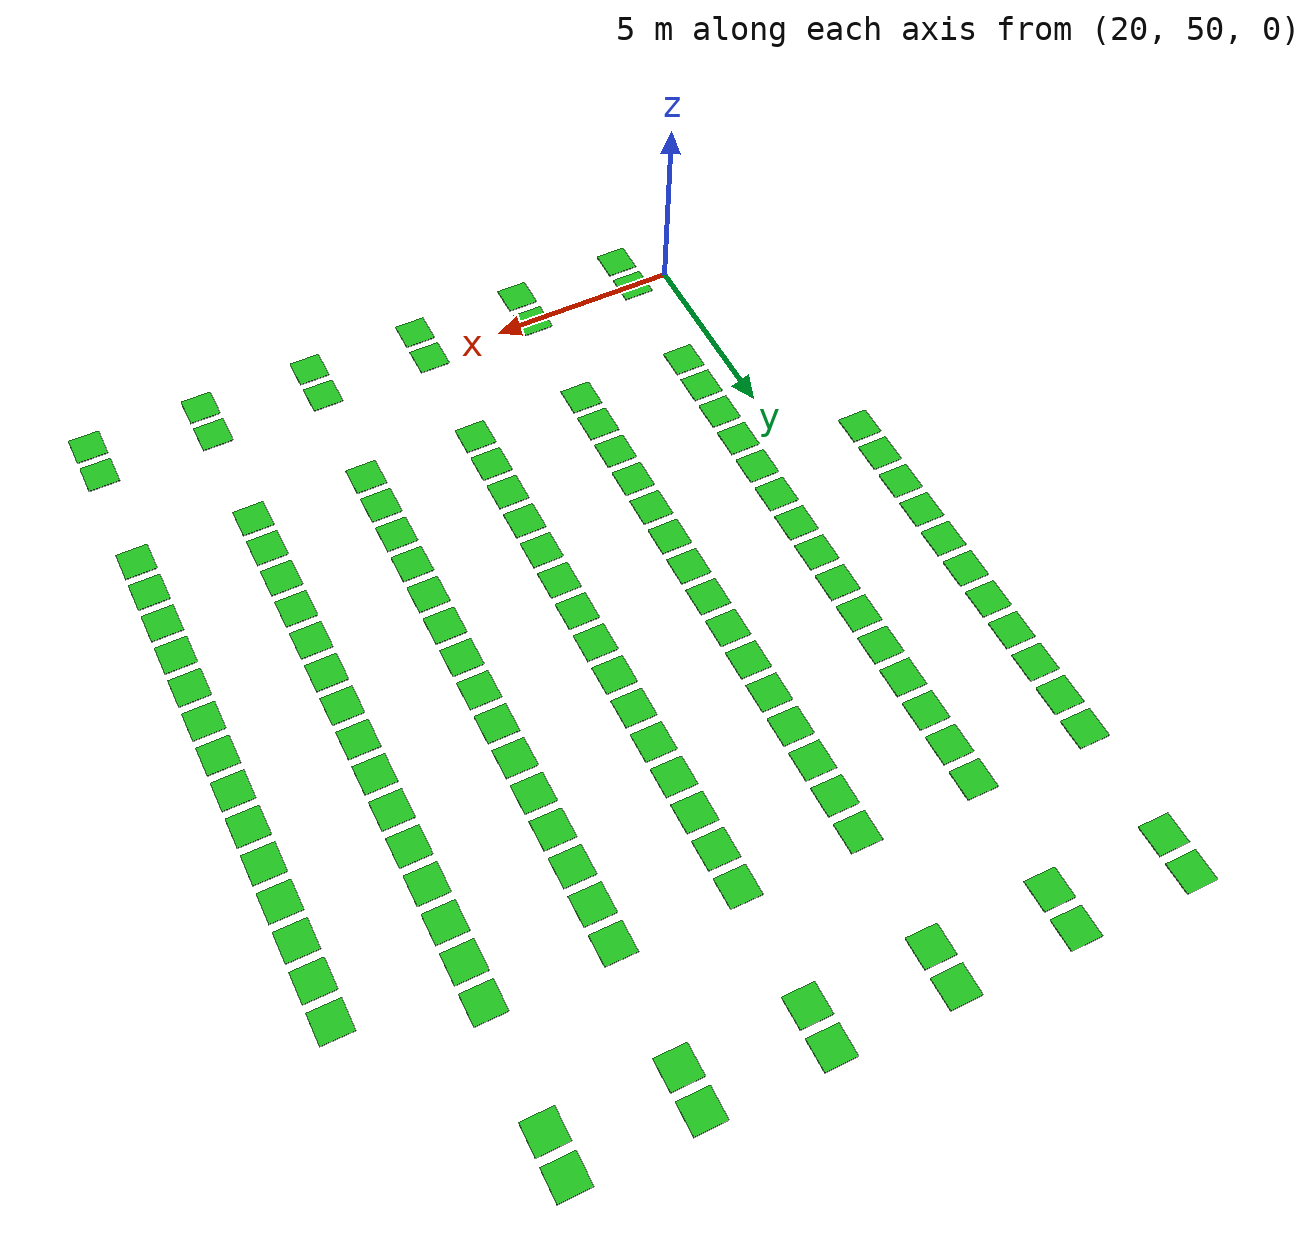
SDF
<sdf version="1.10">
 <world name="my_map">
  <model name="shelf_706">
   <static>true</static>
   <pose>18.0
        71.0
        0.02
        0 0 0</pose>
   <link name="link">
    <visual name="visual">
     <geometry><box><size>0.8
                0.8
                0.02</size></box></geometry>
     <material><ambient>0.10 0.70 0.10 1</ambient><diffuse>0.10 0.70 0.10 1</diffuse></material>
    </visual>
   </link>
  </model>
  <model name="shelf_707">
   <static>true</static>
   <pose>21.0
        71.0
        0.02
        0 0 0</pose>
   <link name="link">
    <visual name="visual">
     <geometry><box><size>0.8
                0.8
                0.02</size></box></geometry>
     <material><ambient>0.10 0.70 0.10 1</ambient><diffuse>0.10 0.70 0.10 1</diffuse></material>
    </visual>
   </link>
  </model>
  <model name="shelf_708">
   <static>true</static>
   <pose>24.0
        71.0
        0.02
        0 0 0</pose>
   <link name="link">
    <visual name="visual">
     <geometry><box><size>0.8
                0.8
                0.02</size></box></geometry>
     <material><ambient>0.10 0.70 0.10 1</ambient><diffuse>0.10 0.70 0.10 1</diffuse></material>
    </visual>
   </link>
  </model>
  <model name="shelf_709">
   <static>true</static>
   <pose>27.0
        71.0
        0.02
        0 0 0</pose>
   <link name="link">
    <visual name="visual">
     <geometry><box><size>0.8
                0.8
                0.02</size></box></geometry>
     <material><ambient>0.10 0.70 0.10 1</ambient><diffuse>0.10 0.70 0.10 1</diffuse></material>
    </visual>
   </link>
  </model>
  <model name="shelf_710">
   <static>true</static>
   <pose>30.0
        71.0
        0.02
        0 0 0</pose>
   <link name="link">
    <visual name="visual">
     <geometry><box><size>0.8
                0.8
                0.02</size></box></geometry>
     <material><ambient>0.10 0.70 0.10 1</ambient><diffuse>0.10 0.70 0.10 1</diffuse></material>
    </visual>
   </link>
  </model>
  <model name="shelf_711">
   <static>true</static>
   <pose>33.0
        71.0
        0.02
        0 0 0</pose>
   <link name="link">
    <visual name="visual">
     <geometry><box><size>0.8
                0.8
                0.02</size></box></geometry>
     <material><ambient>0.10 0.70 0.10 1</ambient><diffuse>0.10 0.70 0.10 1</diffuse></material>
    </visual>
   </link>
  </model>
  <model name="shelf_731">
   <static>true</static>
   <pose>18.0
        70.0
        0.02
        0 0 0</pose>
   <link name="link">
    <visual name="visual">
     <geometry><box><size>0.8
                0.8
                0.02</size></box></geometry>
     <material><ambient>0.10 0.70 0.10 1</ambient><diffuse>0.10 0.70 0.10 1</diffuse></material>
    </visual>
   </link>
  </model>
  <model name="shelf_732">
   <static>true</static>
   <pose>21.0
        70.0
        0.02
        0 0 0</pose>
   <link name="link">
    <visual name="visual">
     <geometry><box><size>0.8
                0.8
                0.02</size></box></geometry>
     <material><ambient>0.10 0.70 0.10 1</ambient><diffuse>0.10 0.70 0.10 1</diffuse></material>
    </visual>
   </link>
  </model>
  <model name="shelf_733">
   <static>true</static>
   <pose>24.0
        70.0
        0.02
        0 0 0</pose>
   <link name="link">
    <visual name="visual">
     <geometry><box><size>0.8
                0.8
                0.02</size></box></geometry>
     <material><ambient>0.10 0.70 0.10 1</ambient><diffuse>0.10 0.70 0.10 1</diffuse></material>
    </visual>
   </link>
  </model>
  <model name="shelf_734">
   <static>true</static>
   <pose>27.0
        70.0
        0.02
        0 0 0</pose>
   <link name="link">
    <visual name="visual">
     <geometry><box><size>0.8
                0.8
                0.02</size></box></geometry>
     <material><ambient>0.10 0.70 0.10 1</ambient><diffuse>0.10 0.70 0.10 1</diffuse></material>
    </visual>
   </link>
  </model>
  <model name="shelf_735">
   <static>true</static>
   <pose>30.0
        70.0
        0.02
        0 0 0</pose>
   <link name="link">
    <visual name="visual">
     <geometry><box><size>0.8
                0.8
                0.02</size></box></geometry>
     <material><ambient>0.10 0.70 0.10 1</ambient><diffuse>0.10 0.70 0.10 1</diffuse></material>
    </visual>
   </link>
  </model>
  <model name="shelf_736">
   <static>true</static>
   <pose>33.0
        70.0
        0.02
        0 0 0</pose>
   <link name="link">
    <visual name="visual">
     <geometry><box><size>0.8
                0.8
                0.02</size></box></geometry>
     <material><ambient>0.10 0.70 0.10 1</ambient><diffuse>0.10 0.70 0.10 1</diffuse></material>
    </visual>
   </link>
  </model>
  <model name="shelf_756">
   <static>true</static>
   <pose>18.0
        67.0
        0.02
        0 0 0</pose>
   <link name="link">
    <visual name="visual">
     <geometry><box><size>0.8
                0.8
                0.02</size></box></geometry>
     <material><ambient>0.10 0.70 0.10 1</ambient><diffuse>0.10 0.70 0.10 1</diffuse></material>
    </visual>
   </link>
  </model>
  <model name="shelf_757">
   <static>true</static>
   <pose>21.0
        67.0
        0.02
        0 0 0</pose>
   <link name="link">
    <visual name="visual">
     <geometry><box><size>0.8
                0.8
                0.02</size></box></geometry>
     <material><ambient>0.10 0.70 0.10 1</ambient><diffuse>0.10 0.70 0.10 1</diffuse></material>
    </visual>
   </link>
  </model>
  <model name="shelf_758">
   <static>true</static>
   <pose>24.0
        67.0
        0.02
        0 0 0</pose>
   <link name="link">
    <visual name="visual">
     <geometry><box><size>0.8
                0.8
                0.02</size></box></geometry>
     <material><ambient>0.10 0.70 0.10 1</ambient><diffuse>0.10 0.70 0.10 1</diffuse></material>
    </visual>
   </link>
  </model>
  <model name="shelf_759">
   <static>true</static>
   <pose>27.0
        67.0
        0.02
        0 0 0</pose>
   <link name="link">
    <visual name="visual">
     <geometry><box><size>0.8
                0.8
                0.02</size></box></geometry>
     <material><ambient>0.10 0.70 0.10 1</ambient><diffuse>0.10 0.70 0.10 1</diffuse></material>
    </visual>
   </link>
  </model>
  <model name="shelf_760">
   <static>true</static>
   <pose>30.0
        67.0
        0.02
        0 0 0</pose>
   <link name="link">
    <visual name="visual">
     <geometry><box><size>0.8
                0.8
                0.02</size></box></geometry>
     <material><ambient>0.10 0.70 0.10 1</ambient><diffuse>0.10 0.70 0.10 1</diffuse></material>
    </visual>
   </link>
  </model>
  <model name="shelf_761">
   <static>true</static>
   <pose>33.0
        67.0
        0.02
        0 0 0</pose>
   <link name="link">
    <visual name="visual">
     <geometry><box><size>0.8
                0.8
                0.02</size></box></geometry>
     <material><ambient>0.10 0.70 0.10 1</ambient><diffuse>0.10 0.70 0.10 1</diffuse></material>
    </visual>
   </link>
  </model>
  <model name="shelf_781">
   <static>true</static>
   <pose>18.0
        66.0
        0.02
        0 0 0</pose>
   <link name="link">
    <visual name="visual">
     <geometry><box><size>0.8
                0.8
                0.02</size></box></geometry>
     <material><ambient>0.10 0.70 0.10 1</ambient><diffuse>0.10 0.70 0.10 1</diffuse></material>
    </visual>
   </link>
  </model>
  <model name="shelf_782">
   <static>true</static>
   <pose>21.0
        66.0
        0.02
        0 0 0</pose>
   <link name="link">
    <visual name="visual">
     <geometry><box><size>0.8
                0.8
                0.02</size></box></geometry>
     <material><ambient>0.10 0.70 0.10 1</ambient><diffuse>0.10 0.70 0.10 1</diffuse></material>
    </visual>
   </link>
  </model>
  <model name="shelf_783">
   <static>true</static>
   <pose>24.0
        66.0
        0.02
        0 0 0</pose>
   <link name="link">
    <visual name="visual">
     <geometry><box><size>0.8
                0.8
                0.02</size></box></geometry>
     <material><ambient>0.10 0.70 0.10 1</ambient><diffuse>0.10 0.70 0.10 1</diffuse></material>
    </visual>
   </link>
  </model>
  <model name="shelf_784">
   <static>true</static>
   <pose>27.0
        66.0
        0.02
        0 0 0</pose>
   <link name="link">
    <visual name="visual">
     <geometry><box><size>0.8
                0.8
                0.02</size></box></geometry>
     <material><ambient>0.10 0.70 0.10 1</ambient><diffuse>0.10 0.70 0.10 1</diffuse></material>
    </visual>
   </link>
  </model>
  <model name="shelf_785">
   <static>true</static>
   <pose>30.0
        66.0
        0.02
        0 0 0</pose>
   <link name="link">
    <visual name="visual">
     <geometry><box><size>0.8
                0.8
                0.02</size></box></geometry>
     <material><ambient>0.10 0.70 0.10 1</ambient><diffuse>0.10 0.70 0.10 1</diffuse></material>
    </visual>
   </link>
  </model>
  <model name="shelf_786">
   <static>true</static>
   <pose>33.0
        66.0
        0.02
        0 0 0</pose>
   <link name="link">
    <visual name="visual">
     <geometry><box><size>0.8
                0.8
                0.02</size></box></geometry>
     <material><ambient>0.10 0.70 0.10 1</ambient><diffuse>0.10 0.70 0.10 1</diffuse></material>
    </visual>
   </link>
  </model>
  <model name="shelf_787">
   <static>true</static>
   <pose>36.0
        66.0
        0.02
        0 0 0</pose>
   <link name="link">
    <visual name="visual">
     <geometry><box><size>0.8
                0.8
                0.02</size></box></geometry>
     <material><ambient>0.10 0.70 0.10 1</ambient><diffuse>0.10 0.70 0.10 1</diffuse></material>
    </visual>
   </link>
  </model>
  <model name="shelf_806">
   <static>true</static>
   <pose>18.0
        65.0
        0.02
        0 0 0</pose>
   <link name="link">
    <visual name="visual">
     <geometry><box><size>0.8
                0.8
                0.02</size></box></geometry>
     <material><ambient>0.10 0.70 0.10 1</ambient><diffuse>0.10 0.70 0.10 1</diffuse></material>
    </visual>
   </link>
  </model>
  <model name="shelf_807">
   <static>true</static>
   <pose>21.0
        65.0
        0.02
        0 0 0</pose>
   <link name="link">
    <visual name="visual">
     <geometry><box><size>0.8
                0.8
                0.02</size></box></geometry>
     <material><ambient>0.10 0.70 0.10 1</ambient><diffuse>0.10 0.70 0.10 1</diffuse></material>
    </visual>
   </link>
  </model>
  <model name="shelf_808">
   <static>true</static>
   <pose>24.0
        65.0
        0.02
        0 0 0</pose>
   <link name="link">
    <visual name="visual">
     <geometry><box><size>0.8
                0.8
                0.02</size></box></geometry>
     <material><ambient>0.10 0.70 0.10 1</ambient><diffuse>0.10 0.70 0.10 1</diffuse></material>
    </visual>
   </link>
  </model>
  <model name="shelf_809">
   <static>true</static>
   <pose>27.0
        65.0
        0.02
        0 0 0</pose>
   <link name="link">
    <visual name="visual">
     <geometry><box><size>0.8
                0.8
                0.02</size></box></geometry>
     <material><ambient>0.10 0.70 0.10 1</ambient><diffuse>0.10 0.70 0.10 1</diffuse></material>
    </visual>
   </link>
  </model>
  <model name="shelf_810">
   <static>true</static>
   <pose>30.0
        65.0
        0.02
        0 0 0</pose>
   <link name="link">
    <visual name="visual">
     <geometry><box><size>0.8
                0.8
                0.02</size></box></geometry>
     <material><ambient>0.10 0.70 0.10 1</ambient><diffuse>0.10 0.70 0.10 1</diffuse></material>
    </visual>
   </link>
  </model>
  <model name="shelf_811">
   <static>true</static>
   <pose>33.0
        65.0
        0.02
        0 0 0</pose>
   <link name="link">
    <visual name="visual">
     <geometry><box><size>0.8
                0.8
                0.02</size></box></geometry>
     <material><ambient>0.10 0.70 0.10 1</ambient><diffuse>0.10 0.70 0.10 1</diffuse></material>
    </visual>
   </link>
  </model>
  <model name="shelf_812">
   <static>true</static>
   <pose>36.0
        65.0
        0.02
        0 0 0</pose>
   <link name="link">
    <visual name="visual">
     <geometry><box><size>0.8
                0.8
                0.02</size></box></geometry>
     <material><ambient>0.10 0.70 0.10 1</ambient><diffuse>0.10 0.70 0.10 1</diffuse></material>
    </visual>
   </link>
  </model>
  <model name="shelf_831">
   <static>true</static>
   <pose>18.0
        64.0
        0.02
        0 0 0</pose>
   <link name="link">
    <visual name="visual">
     <geometry><box><size>0.8
                0.8
                0.02</size></box></geometry>
     <material><ambient>0.10 0.70 0.10 1</ambient><diffuse>0.10 0.70 0.10 1</diffuse></material>
    </visual>
   </link>
  </model>
  <model name="shelf_832">
   <static>true</static>
   <pose>21.0
        64.0
        0.02
        0 0 0</pose>
   <link name="link">
    <visual name="visual">
     <geometry><box><size>0.8
                0.8
                0.02</size></box></geometry>
     <material><ambient>0.10 0.70 0.10 1</ambient><diffuse>0.10 0.70 0.10 1</diffuse></material>
    </visual>
   </link>
  </model>
  <model name="shelf_833">
   <static>true</static>
   <pose>24.0
        64.0
        0.02
        0 0 0</pose>
   <link name="link">
    <visual name="visual">
     <geometry><box><size>0.8
                0.8
                0.02</size></box></geometry>
     <material><ambient>0.10 0.70 0.10 1</ambient><diffuse>0.10 0.70 0.10 1</diffuse></material>
    </visual>
   </link>
  </model>
  <model name="shelf_834">
   <static>true</static>
   <pose>27.0
        64.0
        0.02
        0 0 0</pose>
   <link name="link">
    <visual name="visual">
     <geometry><box><size>0.8
                0.8
                0.02</size></box></geometry>
     <material><ambient>0.10 0.70 0.10 1</ambient><diffuse>0.10 0.70 0.10 1</diffuse></material>
    </visual>
   </link>
  </model>
  <model name="shelf_835">
   <static>true</static>
   <pose>30.0
        64.0
        0.02
        0 0 0</pose>
   <link name="link">
    <visual name="visual">
     <geometry><box><size>0.8
                0.8
                0.02</size></box></geometry>
     <material><ambient>0.10 0.70 0.10 1</ambient><diffuse>0.10 0.70 0.10 1</diffuse></material>
    </visual>
   </link>
  </model>
  <model name="shelf_836">
   <static>true</static>
   <pose>33.0
        64.0
        0.02
        0 0 0</pose>
   <link name="link">
    <visual name="visual">
     <geometry><box><size>0.8
                0.8
                0.02</size></box></geometry>
     <material><ambient>0.10 0.70 0.10 1</ambient><diffuse>0.10 0.70 0.10 1</diffuse></material>
    </visual>
   </link>
  </model>
  <model name="shelf_837">
   <static>true</static>
   <pose>36.0
        64.0
        0.02
        0 0 0</pose>
   <link name="link">
    <visual name="visual">
     <geometry><box><size>0.8
                0.8
                0.02</size></box></geometry>
     <material><ambient>0.10 0.70 0.10 1</ambient><diffuse>0.10 0.70 0.10 1</diffuse></material>
    </visual>
   </link>
  </model>
  <model name="shelf_856">
   <static>true</static>
   <pose>18.0
        63.0
        0.02
        0 0 0</pose>
   <link name="link">
    <visual name="visual">
     <geometry><box><size>0.8
                0.8
                0.02</size></box></geometry>
     <material><ambient>0.10 0.70 0.10 1</ambient><diffuse>0.10 0.70 0.10 1</diffuse></material>
    </visual>
   </link>
  </model>
  <model name="shelf_857">
   <static>true</static>
   <pose>21.0
        63.0
        0.02
        0 0 0</pose>
   <link name="link">
    <visual name="visual">
     <geometry><box><size>0.8
                0.8
                0.02</size></box></geometry>
     <material><ambient>0.10 0.70 0.10 1</ambient><diffuse>0.10 0.70 0.10 1</diffuse></material>
    </visual>
   </link>
  </model>
  <model name="shelf_858">
   <static>true</static>
   <pose>24.0
        63.0
        0.02
        0 0 0</pose>
   <link name="link">
    <visual name="visual">
     <geometry><box><size>0.8
                0.8
                0.02</size></box></geometry>
     <material><ambient>0.10 0.70 0.10 1</ambient><diffuse>0.10 0.70 0.10 1</diffuse></material>
    </visual>
   </link>
  </model>
  <model name="shelf_859">
   <static>true</static>
   <pose>27.0
        63.0
        0.02
        0 0 0</pose>
   <link name="link">
    <visual name="visual">
     <geometry><box><size>0.8
                0.8
                0.02</size></box></geometry>
     <material><ambient>0.10 0.70 0.10 1</ambient><diffuse>0.10 0.70 0.10 1</diffuse></material>
    </visual>
   </link>
  </model>
  <model name="shelf_860">
   <static>true</static>
   <pose>30.0
        63.0
        0.02
        0 0 0</pose>
   <link name="link">
    <visual name="visual">
     <geometry><box><size>0.8
                0.8
                0.02</size></box></geometry>
     <material><ambient>0.10 0.70 0.10 1</ambient><diffuse>0.10 0.70 0.10 1</diffuse></material>
    </visual>
   </link>
  </model>
  <model name="shelf_861">
   <static>true</static>
   <pose>33.0
        63.0
        0.02
        0 0 0</pose>
   <link name="link">
    <visual name="visual">
     <geometry><box><size>0.8
                0.8
                0.02</size></box></geometry>
     <material><ambient>0.10 0.70 0.10 1</ambient><diffuse>0.10 0.70 0.10 1</diffuse></material>
    </visual>
   </link>
  </model>
  <model name="shelf_862">
   <static>true</static>
   <pose>36.0
        63.0
        0.02
        0 0 0</pose>
   <link name="link">
    <visual name="visual">
     <geometry><box><size>0.8
                0.8
                0.02</size></box></geometry>
     <material><ambient>0.10 0.70 0.10 1</ambient><diffuse>0.10 0.70 0.10 1</diffuse></material>
    </visual>
   </link>
  </model>
  <model name="shelf_881">
   <static>true</static>
   <pose>18.0
        62.0
        0.02
        0 0 0</pose>
   <link name="link">
    <visual name="visual">
     <geometry><box><size>0.8
                0.8
                0.02</size></box></geometry>
     <material><ambient>0.10 0.70 0.10 1</ambient><diffuse>0.10 0.70 0.10 1</diffuse></material>
    </visual>
   </link>
  </model>
  <model name="shelf_882">
   <static>true</static>
   <pose>21.0
        62.0
        0.02
        0 0 0</pose>
   <link name="link">
    <visual name="visual">
     <geometry><box><size>0.8
                0.8
                0.02</size></box></geometry>
     <material><ambient>0.10 0.70 0.10 1</ambient><diffuse>0.10 0.70 0.10 1</diffuse></material>
    </visual>
   </link>
  </model>
  <model name="shelf_883">
   <static>true</static>
   <pose>24.0
        62.0
        0.02
        0 0 0</pose>
   <link name="link">
    <visual name="visual">
     <geometry><box><size>0.8
                0.8
                0.02</size></box></geometry>
     <material><ambient>0.10 0.70 0.10 1</ambient><diffuse>0.10 0.70 0.10 1</diffuse></material>
    </visual>
   </link>
  </model>
  <model name="shelf_884">
   <static>true</static>
   <pose>27.0
        62.0
        0.02
        0 0 0</pose>
   <link name="link">
    <visual name="visual">
     <geometry><box><size>0.8
                0.8
                0.02</size></box></geometry>
     <material><ambient>0.10 0.70 0.10 1</ambient><diffuse>0.10 0.70 0.10 1</diffuse></material>
    </visual>
   </link>
  </model>
  <model name="shelf_885">
   <static>true</static>
   <pose>30.0
        62.0
        0.02
        0 0 0</pose>
   <link name="link">
    <visual name="visual">
     <geometry><box><size>0.8
                0.8
                0.02</size></box></geometry>
     <material><ambient>0.10 0.70 0.10 1</ambient><diffuse>0.10 0.70 0.10 1</diffuse></material>
    </visual>
   </link>
  </model>
  <model name="shelf_886">
   <static>true</static>
   <pose>33.0
        62.0
        0.02
        0 0 0</pose>
   <link name="link">
    <visual name="visual">
     <geometry><box><size>0.8
                0.8
                0.02</size></box></geometry>
     <material><ambient>0.10 0.70 0.10 1</ambient><diffuse>0.10 0.70 0.10 1</diffuse></material>
    </visual>
   </link>
  </model>
  <model name="shelf_887">
   <static>true</static>
   <pose>36.0
        62.0
        0.02
        0 0 0</pose>
   <link name="link">
    <visual name="visual">
     <geometry><box><size>0.8
                0.8
                0.02</size></box></geometry>
     <material><ambient>0.10 0.70 0.10 1</ambient><diffuse>0.10 0.70 0.10 1</diffuse></material>
    </visual>
   </link>
  </model>
  <model name="shelf_906">
   <static>true</static>
   <pose>18.0
        61.0
        0.02
        0 0 0</pose>
   <link name="link">
    <visual name="visual">
     <geometry><box><size>0.8
                0.8
                0.02</size></box></geometry>
     <material><ambient>0.10 0.70 0.10 1</ambient><diffuse>0.10 0.70 0.10 1</diffuse></material>
    </visual>
   </link>
  </model>
  <model name="shelf_907">
   <static>true</static>
   <pose>21.0
        61.0
        0.02
        0 0 0</pose>
   <link name="link">
    <visual name="visual">
     <geometry><box><size>0.8
                0.8
                0.02</size></box></geometry>
     <material><ambient>0.10 0.70 0.10 1</ambient><diffuse>0.10 0.70 0.10 1</diffuse></material>
    </visual>
   </link>
  </model>
  <model name="shelf_908">
   <static>true</static>
   <pose>24.0
        61.0
        0.02
        0 0 0</pose>
   <link name="link">
    <visual name="visual">
     <geometry><box><size>0.8
                0.8
                0.02</size></box></geometry>
     <material><ambient>0.10 0.70 0.10 1</ambient><diffuse>0.10 0.70 0.10 1</diffuse></material>
    </visual>
   </link>
  </model>
  <model name="shelf_909">
   <static>true</static>
   <pose>27.0
        61.0
        0.02
        0 0 0</pose>
   <link name="link">
    <visual name="visual">
     <geometry><box><size>0.8
                0.8
                0.02</size></box></geometry>
     <material><ambient>0.10 0.70 0.10 1</ambient><diffuse>0.10 0.70 0.10 1</diffuse></material>
    </visual>
   </link>
  </model>
  <model name="shelf_910">
   <static>true</static>
   <pose>30.0
        61.0
        0.02
        0 0 0</pose>
   <link name="link">
    <visual name="visual">
     <geometry><box><size>0.8
                0.8
                0.02</size></box></geometry>
     <material><ambient>0.10 0.70 0.10 1</ambient><diffuse>0.10 0.70 0.10 1</diffuse></material>
    </visual>
   </link>
  </model>
  <model name="shelf_911">
   <static>true</static>
   <pose>33.0
        61.0
        0.02
        0 0 0</pose>
   <link name="link">
    <visual name="visual">
     <geometry><box><size>0.8
                0.8
                0.02</size></box></geometry>
     <material><ambient>0.10 0.70 0.10 1</ambient><diffuse>0.10 0.70 0.10 1</diffuse></material>
    </visual>
   </link>
  </model>
  <model name="shelf_912">
   <static>true</static>
   <pose>36.0
        61.0
        0.02
        0 0 0</pose>
   <link name="link">
    <visual name="visual">
     <geometry><box><size>0.8
                0.8
                0.02</size></box></geometry>
     <material><ambient>0.10 0.70 0.10 1</ambient><diffuse>0.10 0.70 0.10 1</diffuse></material>
    </visual>
   </link>
  </model>
  <model name="shelf_931">
   <static>true</static>
   <pose>18.0
        60.0
        0.02
        0 0 0</pose>
   <link name="link">
    <visual name="visual">
     <geometry><box><size>0.8
                0.8
                0.02</size></box></geometry>
     <material><ambient>0.10 0.70 0.10 1</ambient><diffuse>0.10 0.70 0.10 1</diffuse></material>
    </visual>
   </link>
  </model>
  <model name="shelf_932">
   <static>true</static>
   <pose>21.0
        60.0
        0.02
        0 0 0</pose>
   <link name="link">
    <visual name="visual">
     <geometry><box><size>0.8
                0.8
                0.02</size></box></geometry>
     <material><ambient>0.10 0.70 0.10 1</ambient><diffuse>0.10 0.70 0.10 1</diffuse></material>
    </visual>
   </link>
  </model>
  <model name="shelf_933">
   <static>true</static>
   <pose>24.0
        60.0
        0.02
        0 0 0</pose>
   <link name="link">
    <visual name="visual">
     <geometry><box><size>0.8
                0.8
                0.02</size></box></geometry>
     <material><ambient>0.10 0.70 0.10 1</ambient><diffuse>0.10 0.70 0.10 1</diffuse></material>
    </visual>
   </link>
  </model>
  <model name="shelf_934">
   <static>true</static>
   <pose>27.0
        60.0
        0.02
        0 0 0</pose>
   <link name="link">
    <visual name="visual">
     <geometry><box><size>0.8
                0.8
                0.02</size></box></geometry>
     <material><ambient>0.10 0.70 0.10 1</ambient><diffuse>0.10 0.70 0.10 1</diffuse></material>
    </visual>
   </link>
  </model>
  <model name="shelf_935">
   <static>true</static>
   <pose>30.0
        60.0
        0.02
        0 0 0</pose>
   <link name="link">
    <visual name="visual">
     <geometry><box><size>0.8
                0.8
                0.02</size></box></geometry>
     <material><ambient>0.10 0.70 0.10 1</ambient><diffuse>0.10 0.70 0.10 1</diffuse></material>
    </visual>
   </link>
  </model>
  <model name="shelf_936">
   <static>true</static>
   <pose>33.0
        60.0
        0.02
        0 0 0</pose>
   <link name="link">
    <visual name="visual">
     <geometry><box><size>0.8
                0.8
                0.02</size></box></geometry>
     <material><ambient>0.10 0.70 0.10 1</ambient><diffuse>0.10 0.70 0.10 1</diffuse></material>
    </visual>
   </link>
  </model>
  <model name="shelf_937">
   <static>true</static>
   <pose>36.0
        60.0
        0.02
        0 0 0</pose>
   <link name="link">
    <visual name="visual">
     <geometry><box><size>0.8
                0.8
                0.02</size></box></geometry>
     <material><ambient>0.10 0.70 0.10 1</ambient><diffuse>0.10 0.70 0.10 1</diffuse></material>
    </visual>
   </link>
  </model>
  <model name="shelf_956">
   <static>true</static>
   <pose>18.0
        59.0
        0.02
        0 0 0</pose>
   <link name="link">
    <visual name="visual">
     <geometry><box><size>0.8
                0.8
                0.02</size></box></geometry>
     <material><ambient>0.10 0.70 0.10 1</ambient><diffuse>0.10 0.70 0.10 1</diffuse></material>
    </visual>
   </link>
  </model>
  <model name="shelf_957">
   <static>true</static>
   <pose>21.0
        59.0
        0.02
        0 0 0</pose>
   <link name="link">
    <visual name="visual">
     <geometry><box><size>0.8
                0.8
                0.02</size></box></geometry>
     <material><ambient>0.10 0.70 0.10 1</ambient><diffuse>0.10 0.70 0.10 1</diffuse></material>
    </visual>
   </link>
  </model>
  <model name="shelf_958">
   <static>true</static>
   <pose>24.0
        59.0
        0.02
        0 0 0</pose>
   <link name="link">
    <visual name="visual">
     <geometry><box><size>0.8
                0.8
                0.02</size></box></geometry>
     <material><ambient>0.10 0.70 0.10 1</ambient><diffuse>0.10 0.70 0.10 1</diffuse></material>
    </visual>
   </link>
  </model>
  <model name="shelf_959">
   <static>true</static>
   <pose>27.0
        59.0
        0.02
        0 0 0</pose>
   <link name="link">
    <visual name="visual">
     <geometry><box><size>0.8
                0.8
                0.02</size></box></geometry>
     <material><ambient>0.10 0.70 0.10 1</ambient><diffuse>0.10 0.70 0.10 1</diffuse></material>
    </visual>
   </link>
  </model>
  <model name="shelf_960">
   <static>true</static>
   <pose>30.0
        59.0
        0.02
        0 0 0</pose>
   <link name="link">
    <visual name="visual">
     <geometry><box><size>0.8
                0.8
                0.02</size></box></geometry>
     <material><ambient>0.10 0.70 0.10 1</ambient><diffuse>0.10 0.70 0.10 1</diffuse></material>
    </visual>
   </link>
  </model>
  <model name="shelf_961">
   <static>true</static>
   <pose>33.0
        59.0
        0.02
        0 0 0</pose>
   <link name="link">
    <visual name="visual">
     <geometry><box><size>0.8
                0.8
                0.02</size></box></geometry>
     <material><ambient>0.10 0.70 0.10 1</ambient><diffuse>0.10 0.70 0.10 1</diffuse></material>
    </visual>
   </link>
  </model>
  <model name="shelf_962">
   <static>true</static>
   <pose>36.0
        59.0
        0.02
        0 0 0</pose>
   <link name="link">
    <visual name="visual">
     <geometry><box><size>0.8
                0.8
                0.02</size></box></geometry>
     <material><ambient>0.10 0.70 0.10 1</ambient><diffuse>0.10 0.70 0.10 1</diffuse></material>
    </visual>
   </link>
  </model>
  <model name="shelf_981">
   <static>true</static>
   <pose>18.0
        58.0
        0.02
        0 0 0</pose>
   <link name="link">
    <visual name="visual">
     <geometry><box><size>0.8
                0.8
                0.02</size></box></geometry>
     <material><ambient>0.10 0.70 0.10 1</ambient><diffuse>0.10 0.70 0.10 1</diffuse></material>
    </visual>
   </link>
  </model>
  <model name="shelf_982">
   <static>true</static>
   <pose>21.0
        58.0
        0.02
        0 0 0</pose>
   <link name="link">
    <visual name="visual">
     <geometry><box><size>0.8
                0.8
                0.02</size></box></geometry>
     <material><ambient>0.10 0.70 0.10 1</ambient><diffuse>0.10 0.70 0.10 1</diffuse></material>
    </visual>
   </link>
  </model>
  <model name="shelf_983">
   <static>true</static>
   <pose>24.0
        58.0
        0.02
        0 0 0</pose>
   <link name="link">
    <visual name="visual">
     <geometry><box><size>0.8
                0.8
                0.02</size></box></geometry>
     <material><ambient>0.10 0.70 0.10 1</ambient><diffuse>0.10 0.70 0.10 1</diffuse></material>
    </visual>
   </link>
  </model>
  <model name="shelf_984">
   <static>true</static>
   <pose>27.0
        58.0
        0.02
        0 0 0</pose>
   <link name="link">
    <visual name="visual">
     <geometry><box><size>0.8
                0.8
                0.02</size></box></geometry>
     <material><ambient>0.10 0.70 0.10 1</ambient><diffuse>0.10 0.70 0.10 1</diffuse></material>
    </visual>
   </link>
  </model>
  <model name="shelf_985">
   <static>true</static>
   <pose>30.0
        58.0
        0.02
        0 0 0</pose>
   <link name="link">
    <visual name="visual">
     <geometry><box><size>0.8
                0.8
                0.02</size></box></geometry>
     <material><ambient>0.10 0.70 0.10 1</ambient><diffuse>0.10 0.70 0.10 1</diffuse></material>
    </visual>
   </link>
  </model>
  <model name="shelf_986">
   <static>true</static>
   <pose>33.0
        58.0
        0.02
        0 0 0</pose>
   <link name="link">
    <visual name="visual">
     <geometry><box><size>0.8
                0.8
                0.02</size></box></geometry>
     <material><ambient>0.10 0.70 0.10 1</ambient><diffuse>0.10 0.70 0.10 1</diffuse></material>
    </visual>
   </link>
  </model>
  <model name="shelf_987">
   <static>true</static>
   <pose>36.0
        58.0
        0.02
        0 0 0</pose>
   <link name="link">
    <visual name="visual">
     <geometry><box><size>0.8
                0.8
                0.02</size></box></geometry>
     <material><ambient>0.10 0.70 0.10 1</ambient><diffuse>0.10 0.70 0.10 1</diffuse></material>
    </visual>
   </link>
  </model>
  <model name="shelf_1006">
   <static>true</static>
   <pose>18.0
        57.0
        0.02
        0 0 0</pose>
   <link name="link">
    <visual name="visual">
     <geometry><box><size>0.8
                0.8
                0.02</size></box></geometry>
     <material><ambient>0.10 0.70 0.10 1</ambient><diffuse>0.10 0.70 0.10 1</diffuse></material>
    </visual>
   </link>
  </model>
  <model name="shelf_1007">
   <static>true</static>
   <pose>21.0
        57.0
        0.02
        0 0 0</pose>
   <link name="link">
    <visual name="visual">
     <geometry><box><size>0.8
                0.8
                0.02</size></box></geometry>
     <material><ambient>0.10 0.70 0.10 1</ambient><diffuse>0.10 0.70 0.10 1</diffuse></material>
    </visual>
   </link>
  </model>
  <model name="shelf_1008">
   <static>true</static>
   <pose>24.0
        57.0
        0.02
        0 0 0</pose>
   <link name="link">
    <visual name="visual">
     <geometry><box><size>0.8
                0.8
                0.02</size></box></geometry>
     <material><ambient>0.10 0.70 0.10 1</ambient><diffuse>0.10 0.70 0.10 1</diffuse></material>
    </visual>
   </link>
  </model>
  <model name="shelf_1009">
   <static>true</static>
   <pose>27.0
        57.0
        0.02
        0 0 0</pose>
   <link name="link">
    <visual name="visual">
     <geometry><box><size>0.8
                0.8
                0.02</size></box></geometry>
     <material><ambient>0.10 0.70 0.10 1</ambient><diffuse>0.10 0.70 0.10 1</diffuse></material>
    </visual>
   </link>
  </model>
  <model name="shelf_1010">
   <static>true</static>
   <pose>30.0
        57.0
        0.02
        0 0 0</pose>
   <link name="link">
    <visual name="visual">
     <geometry><box><size>0.8
                0.8
                0.02</size></box></geometry>
     <material><ambient>0.10 0.70 0.10 1</ambient><diffuse>0.10 0.70 0.10 1</diffuse></material>
    </visual>
   </link>
  </model>
  <model name="shelf_1011">
   <static>true</static>
   <pose>33.0
        57.0
        0.02
        0 0 0</pose>
   <link name="link">
    <visual name="visual">
     <geometry><box><size>0.8
                0.8
                0.02</size></box></geometry>
     <material><ambient>0.10 0.70 0.10 1</ambient><diffuse>0.10 0.70 0.10 1</diffuse></material>
    </visual>
   </link>
  </model>
  <model name="shelf_1012">
   <static>true</static>
   <pose>36.0
        57.0
        0.02
        0 0 0</pose>
   <link name="link">
    <visual name="visual">
     <geometry><box><size>0.8
                0.8
                0.02</size></box></geometry>
     <material><ambient>0.10 0.70 0.10 1</ambient><diffuse>0.10 0.70 0.10 1</diffuse></material>
    </visual>
   </link>
  </model>
  <model name="shelf_1032">
   <static>true</static>
   <pose>21.0
        56.0
        0.02
        0 0 0</pose>
   <link name="link">
    <visual name="visual">
     <geometry><box><size>0.8
                0.8
                0.02</size></box></geometry>
     <material><ambient>0.10 0.70 0.10 1</ambient><diffuse>0.10 0.70 0.10 1</diffuse></material>
    </visual>
   </link>
  </model>
  <model name="shelf_1033">
   <static>true</static>
   <pose>24.0
        56.0
        0.02
        0 0 0</pose>
   <link name="link">
    <visual name="visual">
     <geometry><box><size>0.8
                0.8
                0.02</size></box></geometry>
     <material><ambient>0.10 0.70 0.10 1</ambient><diffuse>0.10 0.70 0.10 1</diffuse></material>
    </visual>
   </link>
  </model>
  <model name="shelf_1034">
   <static>true</static>
   <pose>27.0
        56.0
        0.02
        0 0 0</pose>
   <link name="link">
    <visual name="visual">
     <geometry><box><size>0.8
                0.8
                0.02</size></box></geometry>
     <material><ambient>0.10 0.70 0.10 1</ambient><diffuse>0.10 0.70 0.10 1</diffuse></material>
    </visual>
   </link>
  </model>
  <model name="shelf_1035">
   <static>true</static>
   <pose>30.0
        56.0
        0.02
        0 0 0</pose>
   <link name="link">
    <visual name="visual">
     <geometry><box><size>0.8
                0.8
                0.02</size></box></geometry>
     <material><ambient>0.10 0.70 0.10 1</ambient><diffuse>0.10 0.70 0.10 1</diffuse></material>
    </visual>
   </link>
  </model>
  <model name="shelf_1036">
   <static>true</static>
   <pose>33.0
        56.0
        0.02
        0 0 0</pose>
   <link name="link">
    <visual name="visual">
     <geometry><box><size>0.8
                0.8
                0.02</size></box></geometry>
     <material><ambient>0.10 0.70 0.10 1</ambient><diffuse>0.10 0.70 0.10 1</diffuse></material>
    </visual>
   </link>
  </model>
  <model name="shelf_1037">
   <static>true</static>
   <pose>36.0
        56.0
        0.02
        0 0 0</pose>
   <link name="link">
    <visual name="visual">
     <geometry><box><size>0.8
                0.8
                0.02</size></box></geometry>
     <material><ambient>0.10 0.70 0.10 1</ambient><diffuse>0.10 0.70 0.10 1</diffuse></material>
    </visual>
   </link>
  </model>
  <model name="shelf_1057">
   <static>true</static>
   <pose>21.0
        55.0
        0.02
        0 0 0</pose>
   <link name="link">
    <visual name="visual">
     <geometry><box><size>0.8
                0.8
                0.02</size></box></geometry>
     <material><ambient>0.10 0.70 0.10 1</ambient><diffuse>0.10 0.70 0.10 1</diffuse></material>
    </visual>
   </link>
  </model>
  <model name="shelf_1058">
   <static>true</static>
   <pose>24.0
        55.0
        0.02
        0 0 0</pose>
   <link name="link">
    <visual name="visual">
     <geometry><box><size>0.8
                0.8
                0.02</size></box></geometry>
     <material><ambient>0.10 0.70 0.10 1</ambient><diffuse>0.10 0.70 0.10 1</diffuse></material>
    </visual>
   </link>
  </model>
  <model name="shelf_1059">
   <static>true</static>
   <pose>27.0
        55.0
        0.02
        0 0 0</pose>
   <link name="link">
    <visual name="visual">
     <geometry><box><size>0.8
                0.8
                0.02</size></box></geometry>
     <material><ambient>0.10 0.70 0.10 1</ambient><diffuse>0.10 0.70 0.10 1</diffuse></material>
    </visual>
   </link>
  </model>
  <model name="shelf_1060">
   <static>true</static>
   <pose>30.0
        55.0
        0.02
        0 0 0</pose>
   <link name="link">
    <visual name="visual">
     <geometry><box><size>0.8
                0.8
                0.02</size></box></geometry>
     <material><ambient>0.10 0.70 0.10 1</ambient><diffuse>0.10 0.70 0.10 1</diffuse></material>
    </visual>
   </link>
  </model>
  <model name="shelf_1061">
   <static>true</static>
   <pose>33.0
        55.0
        0.02
        0 0 0</pose>
   <link name="link">
    <visual name="visual">
     <geometry><box><size>0.8
                0.8
                0.02</size></box></geometry>
     <material><ambient>0.10 0.70 0.10 1</ambient><diffuse>0.10 0.70 0.10 1</diffuse></material>
    </visual>
   </link>
  </model>
  <model name="shelf_1062">
   <static>true</static>
   <pose>36.0
        55.0
        0.02
        0 0 0</pose>
   <link name="link">
    <visual name="visual">
     <geometry><box><size>0.8
                0.8
                0.02</size></box></geometry>
     <material><ambient>0.10 0.70 0.10 1</ambient><diffuse>0.10 0.70 0.10 1</diffuse></material>
    </visual>
   </link>
  </model>
  <model name="shelf_1082">
   <static>true</static>
   <pose>21.0
        54.0
        0.02
        0 0 0</pose>
   <link name="link">
    <visual name="visual">
     <geometry><box><size>0.8
                0.8
                0.02</size></box></geometry>
     <material><ambient>0.10 0.70 0.10 1</ambient><diffuse>0.10 0.70 0.10 1</diffuse></material>
    </visual>
   </link>
  </model>
  <model name="shelf_1083">
   <static>true</static>
   <pose>24.0
        54.0
        0.02
        0 0 0</pose>
   <link name="link">
    <visual name="visual">
     <geometry><box><size>0.8
                0.8
                0.02</size></box></geometry>
     <material><ambient>0.10 0.70 0.10 1</ambient><diffuse>0.10 0.70 0.10 1</diffuse></material>
    </visual>
   </link>
  </model>
  <model name="shelf_1084">
   <static>true</static>
   <pose>27.0
        54.0
        0.02
        0 0 0</pose>
   <link name="link">
    <visual name="visual">
     <geometry><box><size>0.8
                0.8
                0.02</size></box></geometry>
     <material><ambient>0.10 0.70 0.10 1</ambient><diffuse>0.10 0.70 0.10 1</diffuse></material>
    </visual>
   </link>
  </model>
  <model name="shelf_1085">
   <static>true</static>
   <pose>30.0
        54.0
        0.02
        0 0 0</pose>
   <link name="link">
    <visual name="visual">
     <geometry><box><size>0.8
                0.8
                0.02</size></box></geometry>
     <material><ambient>0.10 0.70 0.10 1</ambient><diffuse>0.10 0.70 0.10 1</diffuse></material>
    </visual>
   </link>
  </model>
  <model name="shelf_1086">
   <static>true</static>
   <pose>33.0
        54.0
        0.02
        0 0 0</pose>
   <link name="link">
    <visual name="visual">
     <geometry><box><size>0.8
                0.8
                0.02</size></box></geometry>
     <material><ambient>0.10 0.70 0.10 1</ambient><diffuse>0.10 0.70 0.10 1</diffuse></material>
    </visual>
   </link>
  </model>
  <model name="shelf_1087">
   <static>true</static>
   <pose>36.0
        54.0
        0.02
        0 0 0</pose>
   <link name="link">
    <visual name="visual">
     <geometry><box><size>0.8
                0.8
                0.02</size></box></geometry>
     <material><ambient>0.10 0.70 0.10 1</ambient><diffuse>0.10 0.70 0.10 1</diffuse></material>
    </visual>
   </link>
  </model>
  <model name="shelf_1107">
   <static>true</static>
   <pose>21.0
        53.0
        0.02
        0 0 0</pose>
   <link name="link">
    <visual name="visual">
     <geometry><box><size>0.8
                0.8
                0.02</size></box></geometry>
     <material><ambient>0.10 0.70 0.10 1</ambient><diffuse>0.10 0.70 0.10 1</diffuse></material>
    </visual>
   </link>
  </model>
  <model name="shelf_1108">
   <static>true</static>
   <pose>24.0
        53.0
        0.02
        0 0 0</pose>
   <link name="link">
    <visual name="visual">
     <geometry><box><size>0.8
                0.8
                0.02</size></box></geometry>
     <material><ambient>0.10 0.70 0.10 1</ambient><diffuse>0.10 0.70 0.10 1</diffuse></material>
    </visual>
   </link>
  </model>
  <model name="shelf_1109">
   <static>true</static>
   <pose>27.0
        53.0
        0.02
        0 0 0</pose>
   <link name="link">
    <visual name="visual">
     <geometry><box><size>0.8
                0.8
                0.02</size></box></geometry>
     <material><ambient>0.10 0.70 0.10 1</ambient><diffuse>0.10 0.70 0.10 1</diffuse></material>
    </visual>
   </link>
  </model>
  <model name="shelf_1110">
   <static>true</static>
   <pose>30.0
        53.0
        0.02
        0 0 0</pose>
   <link name="link">
    <visual name="visual">
     <geometry><box><size>0.8
                0.8
                0.02</size></box></geometry>
     <material><ambient>0.10 0.70 0.10 1</ambient><diffuse>0.10 0.70 0.10 1</diffuse></material>
    </visual>
   </link>
  </model>
  <model name="shelf_1111">
   <static>true</static>
   <pose>33.0
        53.0
        0.02
        0 0 0</pose>
   <link name="link">
    <visual name="visual">
     <geometry><box><size>0.8
                0.8
                0.02</size></box></geometry>
     <material><ambient>0.10 0.70 0.10 1</ambient><diffuse>0.10 0.70 0.10 1</diffuse></material>
    </visual>
   </link>
  </model>
  <model name="shelf_1112">
   <static>true</static>
   <pose>36.0
        53.0
        0.02
        0 0 0</pose>
   <link name="link">
    <visual name="visual">
     <geometry><box><size>0.8
                0.8
                0.02</size></box></geometry>
     <material><ambient>0.10 0.70 0.10 1</ambient><diffuse>0.10 0.70 0.10 1</diffuse></material>
    </visual>
   </link>
  </model>
  <model name="shelf_1132">
   <static>true</static>
   <pose>21.0
        50.0
        0.02
        0 0 0</pose>
   <link name="link">
    <visual name="visual">
     <geometry><box><size>0.8
                0.8
                0.02</size></box></geometry>
     <material><ambient>0.10 0.70 0.10 1</ambient><diffuse>0.10 0.70 0.10 1</diffuse></material>
    </visual>
   </link>
  </model>
  <model name="shelf_1133">
   <static>true</static>
   <pose>24.0
        50.0
        0.02
        0 0 0</pose>
   <link name="link">
    <visual name="visual">
     <geometry><box><size>0.8
                0.8
                0.02</size></box></geometry>
     <material><ambient>0.10 0.70 0.10 1</ambient><diffuse>0.10 0.70 0.10 1</diffuse></material>
    </visual>
   </link>
  </model>
  <model name="shelf_1134">
   <static>true</static>
   <pose>27.0
        50.0
        0.02
        0 0 0</pose>
   <link name="link">
    <visual name="visual">
     <geometry><box><size>0.8
                0.8
                0.02</size></box></geometry>
     <material><ambient>0.10 0.70 0.10 1</ambient><diffuse>0.10 0.70 0.10 1</diffuse></material>
    </visual>
   </link>
  </model>
  <model name="shelf_1135">
   <static>true</static>
   <pose>30.0
        50.0
        0.02
        0 0 0</pose>
   <link name="link">
    <visual name="visual">
     <geometry><box><size>0.8
                0.8
                0.02</size></box></geometry>
     <material><ambient>0.10 0.70 0.10 1</ambient><diffuse>0.10 0.70 0.10 1</diffuse></material>
    </visual>
   </link>
  </model>
  <model name="shelf_1136">
   <static>true</static>
   <pose>33.0
        50.0
        0.02
        0 0 0</pose>
   <link name="link">
    <visual name="visual">
     <geometry><box><size>0.8
                0.8
                0.02</size></box></geometry>
     <material><ambient>0.10 0.70 0.10 1</ambient><diffuse>0.10 0.70 0.10 1</diffuse></material>
    </visual>
   </link>
  </model>
  <model name="shelf_1137">
   <static>true</static>
   <pose>36.0
        50.0
        0.02
        0 0 0</pose>
   <link name="link">
    <visual name="visual">
     <geometry><box><size>0.8
                0.8
                0.02</size></box></geometry>
     <material><ambient>0.10 0.70 0.10 1</ambient><diffuse>0.10 0.70 0.10 1</diffuse></material>
    </visual>
   </link>
  </model>
  <model name="shelf_1157">
   <static>true</static>
   <pose>21.0
        49.0
        0.02
        0 0 0</pose>
   <link name="link">
    <visual name="visual">
     <geometry><box><size>0.8
                0.8
                0.02</size></box></geometry>
     <material><ambient>0.10 0.70 0.10 1</ambient><diffuse>0.10 0.70 0.10 1</diffuse></material>
    </visual>
   </link>
  </model>
  <model name="shelf_1158">
   <static>true</static>
   <pose>24.0
        49.0
        0.02
        0 0 0</pose>
   <link name="link">
    <visual name="visual">
     <geometry><box><size>0.8
                0.8
                0.02</size></box></geometry>
     <material><ambient>0.10 0.70 0.10 1</ambient><diffuse>0.10 0.70 0.10 1</diffuse></material>
    </visual>
   </link>
  </model>
  <model name="shelf_1159">
   <static>true</static>
   <pose>27.0
        49.0
        0.02
        0 0 0</pose>
   <link name="link">
    <visual name="visual">
     <geometry><box><size>0.8
                0.8
                0.02</size></box></geometry>
     <material><ambient>0.10 0.70 0.10 1</ambient><diffuse>0.10 0.70 0.10 1</diffuse></material>
    </visual>
   </link>
  </model>
  <model name="shelf_1160">
   <static>true</static>
   <pose>30.0
        49.0
        0.02
        0 0 0</pose>
   <link name="link">
    <visual name="visual">
     <geometry><box><size>0.8
                0.8
                0.02</size></box></geometry>
     <material><ambient>0.10 0.70 0.10 1</ambient><diffuse>0.10 0.70 0.10 1</diffuse></material>
    </visual>
   </link>
  </model>
  <model name="shelf_1161">
   <static>true</static>
   <pose>33.0
        49.0
        0.02
        0 0 0</pose>
   <link name="link">
    <visual name="visual">
     <geometry><box><size>0.8
                0.8
                0.02</size></box></geometry>
     <material><ambient>0.10 0.70 0.10 1</ambient><diffuse>0.10 0.70 0.10 1</diffuse></material>
    </visual>
   </link>
  </model>
  <model name="shelf_1162">
   <static>true</static>
   <pose>36.0
        49.0
        0.02
        0 0 0</pose>
   <link name="link">
    <visual name="visual">
     <geometry><box><size>0.8
                0.8
                0.02</size></box></geometry>
     <material><ambient>0.10 0.70 0.10 1</ambient><diffuse>0.10 0.70 0.10 1</diffuse></material>
    </visual>
   </link>
  </model>
 </world>
</sdf>
